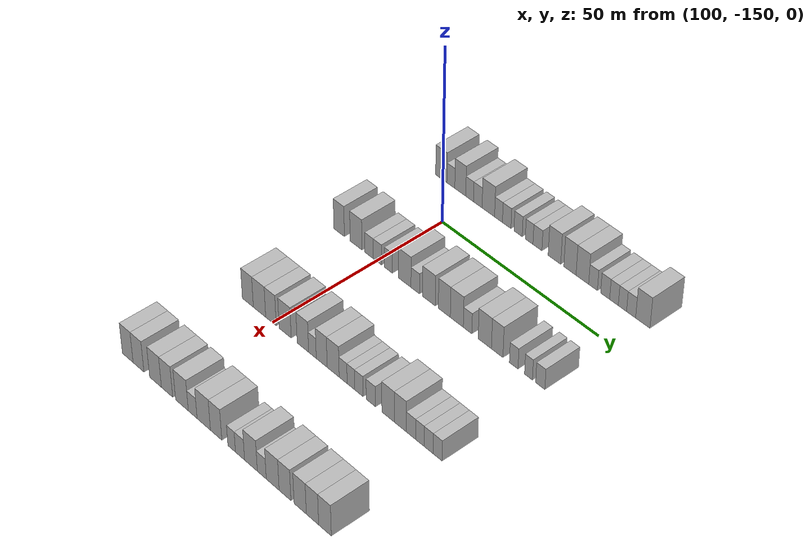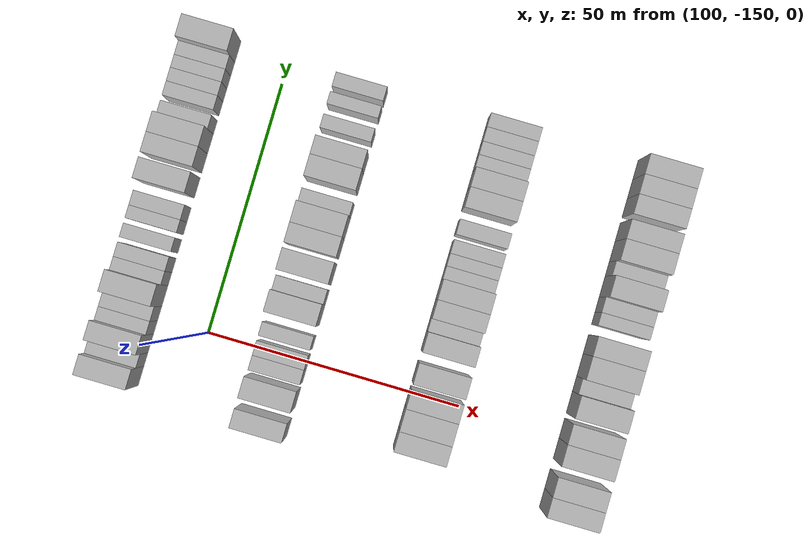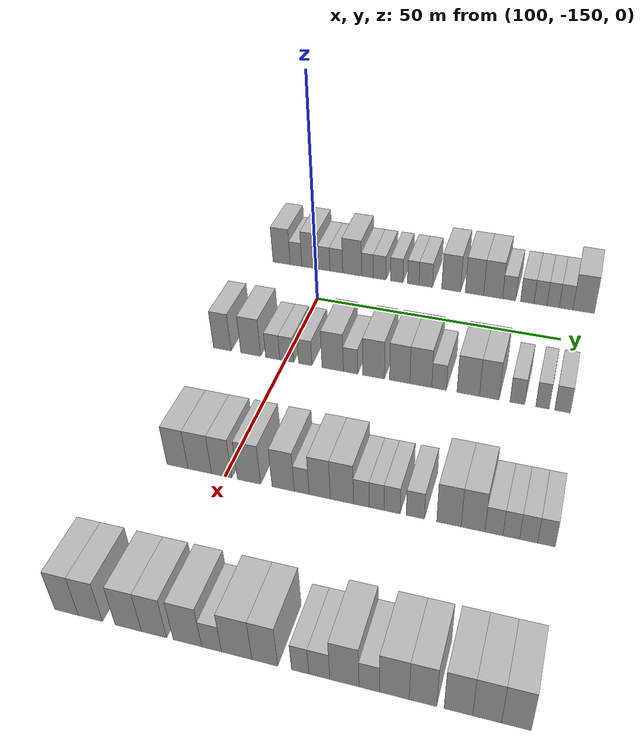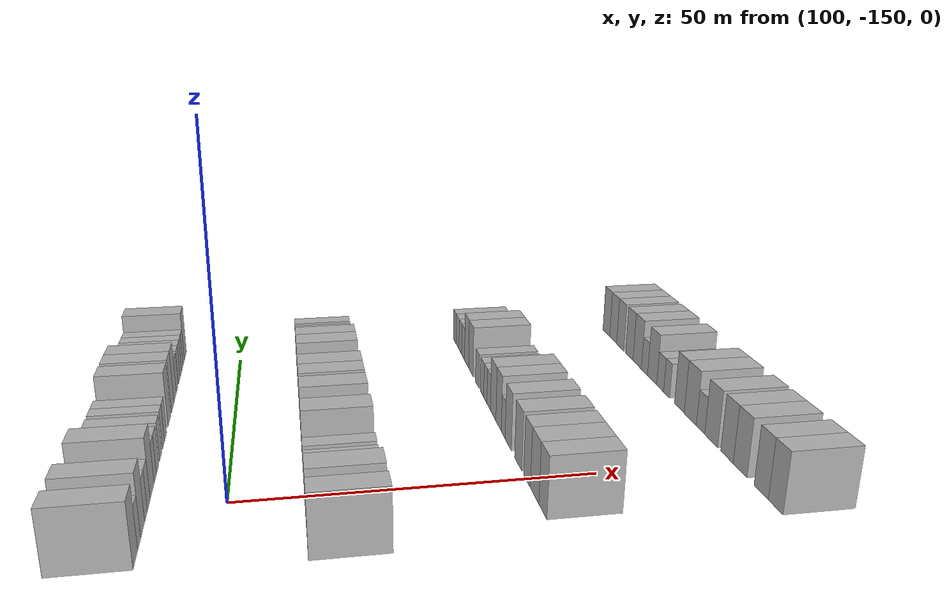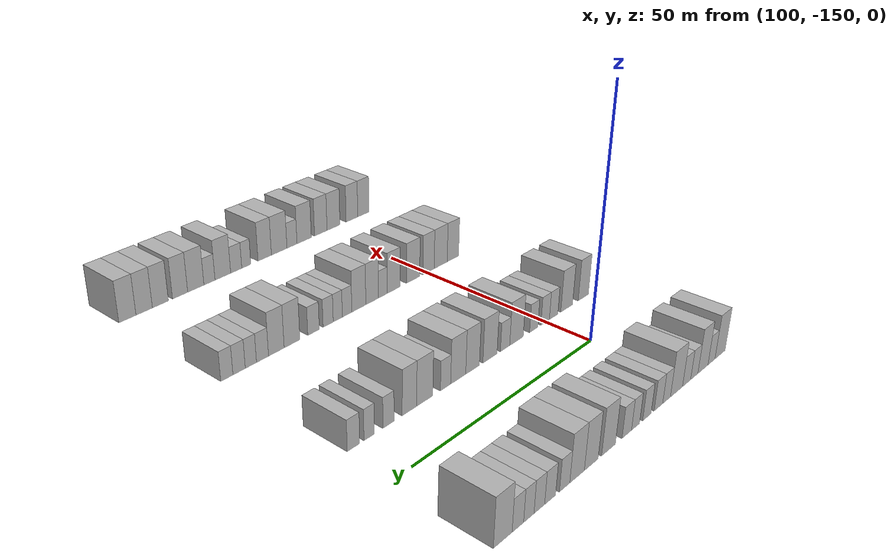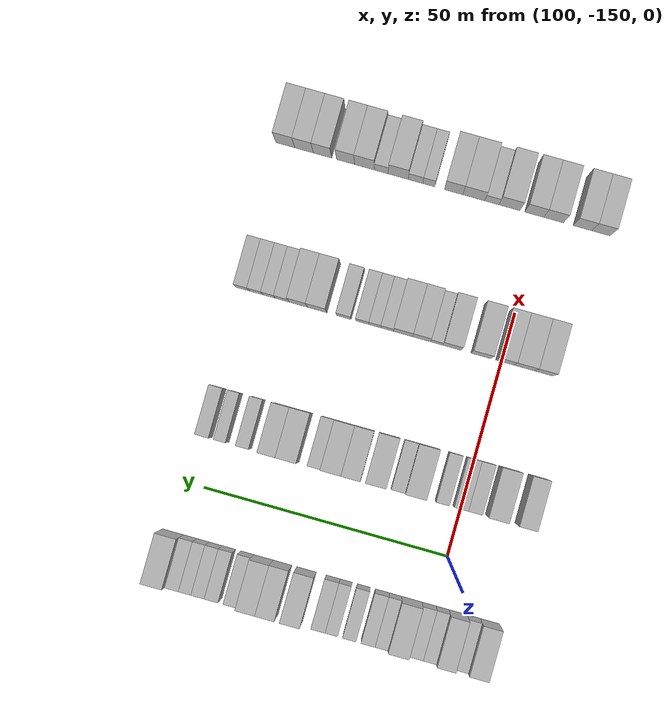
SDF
<sdf version="1.6">
 <world name="default">
  <model name="building_529">
   <static>1</static>
   <pose>85.0000 -161.4632 0 0.000000 0.000000 0.000000</pose>
   <link name="link">
    <pose>0 0 4.50 0 0 0</pose>
    <collision name="collision"><geometry><box><size>10.0000 3.9154 9.0000</size></box></geometry></collision>
    <visual name="visual">
     <cast_shadows>0</cast_shadows>
     <geometry><box><size>10.0000 3.9154 9.0000</size></box></geometry>
     <material>
      <script>
       <uri>model://HANNAS_wall/materials/scripts</uri>
       <uri>model://HANNAS_wall/materials/textures</uri>
       <name>vrc/HANNAS_wall</name>
      </script>
     </material>
    </visual>
   </link>
  </model>
  <model name="building_530">
   <static>1</static>
   <pose>85.0000 -158.1720 0 0.000000 0.000000 0.000000</pose>
   <link name="link">
    <pose>0 0 3.00 0 0 0</pose>
    <collision name="collision"><geometry><box><size>10.0000 2.6670 6.0000</size></box></geometry></collision>
    <visual name="visual">
     <cast_shadows>0</cast_shadows>
     <geometry><box><size>10.0000 2.6670 6.0000</size></box></geometry>
     <material>
      <script>
       <uri>model://HANNAS_wall/materials/scripts</uri>
       <uri>model://HANNAS_wall/materials/textures</uri>
       <name>vrc/HANNAS_wall</name>
      </script>
     </material>
    </visual>
   </link>
  </model>
  <model name="building_531">
   <static>1</static>
   <pose>85.0000 -154.9737 0 0.000000 0.000000 0.000000</pose>
   <link name="link">
    <pose>0 0 4.50 0 0 0</pose>
    <collision name="collision"><geometry><box><size>10.0000 3.7295 9.0000</size></box></geometry></collision>
    <visual name="visual">
     <cast_shadows>0</cast_shadows>
     <geometry><box><size>10.0000 3.7295 9.0000</size></box></geometry>
     <material>
      <script>
       <uri>model://HANNAS_wall/materials/scripts</uri>
       <uri>model://HANNAS_wall/materials/textures</uri>
       <name>vrc/HANNAS_wall</name>
      </script>
     </material>
    </visual>
   </link>
  </model>
  <model name="building_532">
   <static>1</static>
   <pose>85.0000 -151.7923 0 0.000000 0.000000 0.000000</pose>
   <link name="link">
    <pose>0 0 3.00 0 0 0</pose>
    <collision name="collision"><geometry><box><size>10.0000 2.6333 6.0000</size></box></geometry></collision>
    <visual name="visual">
     <cast_shadows>0</cast_shadows>
     <geometry><box><size>10.0000 2.6333 6.0000</size></box></geometry>
     <material>
      <script>
       <uri>model://HANNAS_wall/materials/scripts</uri>
       <uri>model://HANNAS_wall/materials/textures</uri>
       <name>vrc/HANNAS_wall</name>
      </script>
     </material>
    </visual>
   </link>
  </model>
  <model name="building_533">
   <static>1</static>
   <pose>85.0000 -149.0375 0 0.000000 0.000000 0.000000</pose>
   <link name="link">
    <pose>0 0 3.00 0 0 0</pose>
    <collision name="collision"><geometry><box><size>10.0000 2.8764 6.0000</size></box></geometry></collision>
    <visual name="visual">
     <cast_shadows>0</cast_shadows>
     <geometry><box><size>10.0000 2.8764 6.0000</size></box></geometry>
     <material>
      <script>
       <uri>model://HANNAS_wall/materials/scripts</uri>
       <uri>model://HANNAS_wall/materials/textures</uri>
       <name>vrc/HANNAS_wall</name>
      </script>
     </material>
    </visual>
   </link>
  </model>
  <model name="building_534">
   <static>1</static>
   <pose>85.0000 -145.5074 0 0.000000 0.000000 0.000000</pose>
   <link name="link">
    <pose>0 0 4.50 0 0 0</pose>
    <collision name="collision"><geometry><box><size>10.0000 4.1836 9.0000</size></box></geometry></collision>
    <visual name="visual">
     <cast_shadows>0</cast_shadows>
     <geometry><box><size>10.0000 4.1836 9.0000</size></box></geometry>
     <material>
      <script>
       <uri>model://HANNAS_wall/materials/scripts</uri>
       <uri>model://HANNAS_wall/materials/textures</uri>
       <name>vrc/HANNAS_wall</name>
      </script>
     </material>
    </visual>
   </link>
  </model>
  <model name="building_535">
   <static>1</static>
   <pose>85.0000 -142.1148 0 0.000000 0.000000 0.000000</pose>
   <link name="link">
    <pose>0 0 3.00 0 0 0</pose>
    <collision name="collision"><geometry><box><size>10.0000 2.6017 6.0000</size></box></geometry></collision>
    <visual name="visual">
     <cast_shadows>0</cast_shadows>
     <geometry><box><size>10.0000 2.6017 6.0000</size></box></geometry>
     <material>
      <script>
       <uri>model://HANNAS_wall/materials/scripts</uri>
       <uri>model://HANNAS_wall/materials/textures</uri>
       <name>vrc/HANNAS_wall</name>
      </script>
     </material>
    </visual>
   </link>
  </model>
  <model name="building_536">
   <static>1</static>
   <pose>85.0000 -139.4069 0 0.000000 0.000000 0.000000</pose>
   <link name="link">
    <pose>0 0 3.00 0 0 0</pose>
    <collision name="collision"><geometry><box><size>10.0000 2.8141 6.0000</size></box></geometry></collision>
    <visual name="visual">
     <cast_shadows>0</cast_shadows>
     <geometry><box><size>10.0000 2.8141 6.0000</size></box></geometry>
     <material>
      <script>
       <uri>model://HANNAS_wall/materials/scripts</uri>
       <uri>model://HANNAS_wall/materials/textures</uri>
       <name>vrc/HANNAS_wall</name>
      </script>
     </material>
    </visual>
   </link>
  </model>
  <model name="building_537">
   <static>1</static>
   <pose>85.0000 -135.6538 0 0.000000 0.000000 0.000000</pose>
   <link name="link">
    <pose>0 0 3.00 0 0 0</pose>
    <collision name="collision"><geometry><box><size>10.0000 2.6921 6.0000</size></box></geometry></collision>
    <visual name="visual">
     <cast_shadows>0</cast_shadows>
     <geometry><box><size>10.0000 2.6921 6.0000</size></box></geometry>
     <material>
      <script>
       <uri>model://HANNAS_wall/materials/scripts</uri>
       <uri>model://HANNAS_wall/materials/textures</uri>
       <name>vrc/HANNAS_wall</name>
      </script>
     </material>
    </visual>
   </link>
  </model>
  <model name="building_538">
   <static>1</static>
   <pose>85.0000 -132.0599 0 0.000000 0.000000 0.000000</pose>
   <link name="link">
    <pose>0 0 3.00 0 0 0</pose>
    <collision name="collision"><geometry><box><size>10.0000 2.4957 6.0000</size></box></geometry></collision>
    <visual name="visual">
     <cast_shadows>0</cast_shadows>
     <geometry><box><size>10.0000 2.4957 6.0000</size></box></geometry>
     <material>
      <script>
       <uri>model://HANNAS_wall/materials/scripts</uri>
       <uri>model://HANNAS_wall/materials/textures</uri>
       <name>vrc/HANNAS_wall</name>
      </script>
     </material>
    </visual>
   </link>
  </model>
  <model name="building_539">
   <static>1</static>
   <pose>85.0000 -129.3679 0 0.000000 0.000000 0.000000</pose>
   <link name="link">
    <pose>0 0 3.00 0 0 0</pose>
    <collision name="collision"><geometry><box><size>10.0000 2.8884 6.0000</size></box></geometry></collision>
    <visual name="visual">
     <cast_shadows>0</cast_shadows>
     <geometry><box><size>10.0000 2.8884 6.0000</size></box></geometry>
     <material>
      <script>
       <uri>model://HANNAS_wall/materials/scripts</uri>
       <uri>model://HANNAS_wall/materials/textures</uri>
       <name>vrc/HANNAS_wall</name>
      </script>
     </material>
    </visual>
   </link>
  </model>
  <model name="building_540">
   <static>1</static>
   <pose>85.0000 -123.9166 0 0.000000 0.000000 0.000000</pose>
   <link name="link">
    <pose>0 0 4.50 0 0 0</pose>
    <collision name="collision"><geometry><box><size>10.0000 4.0141 9.0000</size></box></geometry></collision>
    <visual name="visual">
     <cast_shadows>0</cast_shadows>
     <geometry><box><size>10.0000 4.0141 9.0000</size></box></geometry>
     <material>
      <script>
       <uri>model://HANNAS_wall/materials/scripts</uri>
       <uri>model://HANNAS_wall/materials/textures</uri>
       <name>vrc/HANNAS_wall</name>
      </script>
     </material>
    </visual>
   </link>
  </model>
  <model name="building_541">
   <static>1</static>
   <pose>85.0000 -118.9790 0 0.000000 0.000000 0.000000</pose>
   <link name="link">
    <pose>0 0 4.50 0 0 0</pose>
    <collision name="collision"><geometry><box><size>10.0000 3.8611 9.0000</size></box></geometry></collision>
    <visual name="visual">
     <cast_shadows>0</cast_shadows>
     <geometry><box><size>10.0000 3.8611 9.0000</size></box></geometry>
     <material>
      <script>
       <uri>model://HANNAS_wall/materials/scripts</uri>
       <uri>model://HANNAS_wall/materials/textures</uri>
       <name>vrc/HANNAS_wall</name>
      </script>
     </material>
    </visual>
   </link>
  </model>
  <model name="building_542">
   <static>1</static>
   <pose>85.0000 -115.0706 0 0.000000 0.000000 0.000000</pose>
   <link name="link">
    <pose>0 0 4.50 0 0 0</pose>
    <collision name="collision"><geometry><box><size>10.0000 3.9558 9.0000</size></box></geometry></collision>
    <visual name="visual">
     <cast_shadows>0</cast_shadows>
     <geometry><box><size>10.0000 3.9558 9.0000</size></box></geometry>
     <material>
      <script>
       <uri>model://HANNAS_wall/materials/scripts</uri>
       <uri>model://HANNAS_wall/materials/textures</uri>
       <name>vrc/HANNAS_wall</name>
      </script>
     </material>
    </visual>
   </link>
  </model>
  <model name="building_543">
   <static>1</static>
   <pose>85.0000 -111.7297 0 0.000000 0.000000 0.000000</pose>
   <link name="link">
    <pose>0 0 3.00 0 0 0</pose>
    <collision name="collision"><geometry><box><size>10.0000 2.7260 6.0000</size></box></geometry></collision>
    <visual name="visual">
     <cast_shadows>0</cast_shadows>
     <geometry><box><size>10.0000 2.7260 6.0000</size></box></geometry>
     <material>
      <script>
       <uri>model://HANNAS_wall/materials/scripts</uri>
       <uri>model://HANNAS_wall/materials/textures</uri>
       <name>vrc/HANNAS_wall</name>
      </script>
     </material>
    </visual>
   </link>
  </model>
  <model name="building_544">
   <static>1</static>
   <pose>85.0000 -107.9745 0 0.000000 0.000000 0.000000</pose>
   <link name="link">
    <pose>0 0 3.00 0 0 0</pose>
    <collision name="collision"><geometry><box><size>10.0000 2.7844 6.0000</size></box></geometry></collision>
    <visual name="visual">
     <cast_shadows>0</cast_shadows>
     <geometry><box><size>10.0000 2.7844 6.0000</size></box></geometry>
     <material>
      <script>
       <uri>model://HANNAS_wall/materials/scripts</uri>
       <uri>model://HANNAS_wall/materials/textures</uri>
       <name>vrc/HANNAS_wall</name>
      </script>
     </material>
    </visual>
   </link>
  </model>
  <model name="building_545">
   <static>1</static>
   <pose>85.0000 -105.2541 0 0.000000 0.000000 0.000000</pose>
   <link name="link">
    <pose>0 0 3.00 0 0 0</pose>
    <collision name="collision"><geometry><box><size>10.0000 2.6563 6.0000</size></box></geometry></collision>
    <visual name="visual">
     <cast_shadows>0</cast_shadows>
     <geometry><box><size>10.0000 2.6563 6.0000</size></box></geometry>
     <material>
      <script>
       <uri>model://HANNAS_wall/materials/scripts</uri>
       <uri>model://HANNAS_wall/materials/textures</uri>
       <name>vrc/HANNAS_wall</name>
      </script>
     </material>
    </visual>
   </link>
  </model>
  <model name="building_546">
   <static>1</static>
   <pose>85.0000 -102.6638 0 0.000000 0.000000 0.000000</pose>
   <link name="link">
    <pose>0 0 3.00 0 0 0</pose>
    <collision name="collision"><geometry><box><size>10.0000 2.5244 6.0000</size></box></geometry></collision>
    <visual name="visual">
     <cast_shadows>0</cast_shadows>
     <geometry><box><size>10.0000 2.5244 6.0000</size></box></geometry>
     <material>
      <script>
       <uri>model://HANNAS_wall/materials/scripts</uri>
       <uri>model://HANNAS_wall/materials/textures</uri>
       <name>vrc/HANNAS_wall</name>
      </script>
     </material>
    </visual>
   </link>
  </model>
  <model name="building_547">
   <static>1</static>
   <pose>85.0000 -100.0275 0 0.000000 0.000000 0.000000</pose>
   <link name="link">
    <pose>0 0 3.00 0 0 0</pose>
    <collision name="collision"><geometry><box><size>10.0000 2.7480 6.0000</size></box></geometry></collision>
    <visual name="visual">
     <cast_shadows>0</cast_shadows>
     <geometry><box><size>10.0000 2.7480 6.0000</size></box></geometry>
     <material>
      <script>
       <uri>model://HANNAS_wall/materials/scripts</uri>
       <uri>model://HANNAS_wall/materials/textures</uri>
       <name>vrc/HANNAS_wall</name>
      </script>
     </material>
    </visual>
   </link>
  </model>
  <model name="building_548">
   <static>1</static>
   <pose>85.0000 -96.4922 0 0.000000 0.000000 0.000000</pose>
   <link name="link">
    <pose>0 0 4.50 0 0 0</pose>
    <collision name="collision"><geometry><box><size>10.0000 4.3225 9.0000</size></box></geometry></collision>
    <visual name="visual">
     <cast_shadows>0</cast_shadows>
     <geometry><box><size>10.0000 4.3225 9.0000</size></box></geometry>
     <material>
      <script>
       <uri>model://HANNAS_wall/materials/scripts</uri>
       <uri>model://HANNAS_wall/materials/textures</uri>
       <name>vrc/HANNAS_wall</name>
      </script>
     </material>
    </visual>
   </link>
  </model>
  <model name="building_747">
   <static>1</static>
   <pose>115.0000 -162.8658 0 0.000000 0.000000 0.000000</pose>
   <link name="link">
    <pose>0 0 4.50 0 0 0</pose>
    <collision name="collision"><geometry><box><size>10.0000 3.6473 9.0000</size></box></geometry></collision>
    <visual name="visual">
     <cast_shadows>0</cast_shadows>
     <geometry><box><size>10.0000 3.6473 9.0000</size></box></geometry>
     <material>
      <script>
       <uri>model://HANNAS_wall/materials/scripts</uri>
       <uri>model://HANNAS_wall/materials/textures</uri>
       <name>vrc/HANNAS_wall</name>
      </script>
     </material>
    </visual>
   </link>
  </model>
  <model name="building_748">
   <static>1</static>
   <pose>115.0000 -157.0064 0 0.000000 0.000000 0.000000</pose>
   <link name="link">
    <pose>0 0 4.50 0 0 0</pose>
    <collision name="collision"><geometry><box><size>10.0000 4.0716 9.0000</size></box></geometry></collision>
    <visual name="visual">
     <cast_shadows>0</cast_shadows>
     <geometry><box><size>10.0000 4.0716 9.0000</size></box></geometry>
     <material>
      <script>
       <uri>model://HANNAS_wall/materials/scripts</uri>
       <uri>model://HANNAS_wall/materials/textures</uri>
       <name>vrc/HANNAS_wall</name>
      </script>
     </material>
    </visual>
   </link>
  </model>
  <model name="building_749">
   <static>1</static>
   <pose>115.0000 -152.5481 0 0.000000 0.000000 0.000000</pose>
   <link name="link">
    <pose>0 0 3.00 0 0 0</pose>
    <collision name="collision"><geometry><box><size>10.0000 2.8449 6.0000</size></box></geometry></collision>
    <visual name="visual">
     <cast_shadows>0</cast_shadows>
     <geometry><box><size>10.0000 2.8449 6.0000</size></box></geometry>
     <material>
      <script>
       <uri>model://HANNAS_wall/materials/scripts</uri>
       <uri>model://HANNAS_wall/materials/textures</uri>
       <name>vrc/HANNAS_wall</name>
      </script>
     </material>
    </visual>
   </link>
  </model>
  <model name="building_750">
   <static>1</static>
   <pose>115.0000 -149.7210 0 0.000000 0.000000 0.000000</pose>
   <link name="link">
    <pose>0 0 3.00 0 0 0</pose>
    <collision name="collision"><geometry><box><size>10.0000 2.8092 6.0000</size></box></geometry></collision>
    <visual name="visual">
     <cast_shadows>0</cast_shadows>
     <geometry><box><size>10.0000 2.8092 6.0000</size></box></geometry>
     <material>
      <script>
       <uri>model://HANNAS_wall/materials/scripts</uri>
       <uri>model://HANNAS_wall/materials/textures</uri>
       <name>vrc/HANNAS_wall</name>
      </script>
     </material>
    </visual>
   </link>
  </model>
  <model name="building_751">
   <static>1</static>
   <pose>115.0000 -145.9831 0 0.000000 0.000000 0.000000</pose>
   <link name="link">
    <pose>0 0 3.00 0 0 0</pose>
    <collision name="collision"><geometry><box><size>10.0000 2.6666 6.0000</size></box></geometry></collision>
    <visual name="visual">
     <cast_shadows>0</cast_shadows>
     <geometry><box><size>10.0000 2.6666 6.0000</size></box></geometry>
     <material>
      <script>
       <uri>model://HANNAS_wall/materials/scripts</uri>
       <uri>model://HANNAS_wall/materials/textures</uri>
       <name>vrc/HANNAS_wall</name>
      </script>
     </material>
    </visual>
   </link>
  </model>
  <model name="building_752">
   <static>1</static>
   <pose>115.0000 -140.5491 0 0.000000 0.000000 0.000000</pose>
   <link name="link">
    <pose>0 0 4.50 0 0 0</pose>
    <collision name="collision"><geometry><box><size>10.0000 4.2014 9.0000</size></box></geometry></collision>
    <visual name="visual">
     <cast_shadows>0</cast_shadows>
     <geometry><box><size>10.0000 4.2014 9.0000</size></box></geometry>
     <material>
      <script>
       <uri>model://HANNAS_wall/materials/scripts</uri>
       <uri>model://HANNAS_wall/materials/textures</uri>
       <name>vrc/HANNAS_wall</name>
      </script>
     </material>
    </visual>
   </link>
  </model>
  <model name="building_753">
   <static>1</static>
   <pose>115.0000 -137.0379 0 0.000000 0.000000 0.000000</pose>
   <link name="link">
    <pose>0 0 3.00 0 0 0</pose>
    <collision name="collision"><geometry><box><size>10.0000 2.8211 6.0000</size></box></geometry></collision>
    <visual name="visual">
     <cast_shadows>0</cast_shadows>
     <geometry><box><size>10.0000 2.8211 6.0000</size></box></geometry>
     <material>
      <script>
       <uri>model://HANNAS_wall/materials/scripts</uri>
       <uri>model://HANNAS_wall/materials/textures</uri>
       <name>vrc/HANNAS_wall</name>
      </script>
     </material>
    </visual>
   </link>
  </model>
  <model name="building_754">
   <static>1</static>
   <pose>115.0000 -132.5451 0 0.000000 0.000000 0.000000</pose>
   <link name="link">
    <pose>0 0 4.50 0 0 0</pose>
    <collision name="collision"><geometry><box><size>10.0000 4.1646 9.0000</size></box></geometry></collision>
    <visual name="visual">
     <cast_shadows>0</cast_shadows>
     <geometry><box><size>10.0000 4.1646 9.0000</size></box></geometry>
     <material>
      <script>
       <uri>model://HANNAS_wall/materials/scripts</uri>
       <uri>model://HANNAS_wall/materials/textures</uri>
       <name>vrc/HANNAS_wall</name>
      </script>
     </material>
    </visual>
   </link>
  </model>
  <model name="building_755">
   <static>1</static>
   <pose>115.0000 -127.5293 0 0.000000 0.000000 0.000000</pose>
   <link name="link">
    <pose>0 0 4.50 0 0 0</pose>
    <collision name="collision"><geometry><box><size>10.0000 3.8669 9.0000</size></box></geometry></collision>
    <visual name="visual">
     <cast_shadows>0</cast_shadows>
     <geometry><box><size>10.0000 3.8669 9.0000</size></box></geometry>
     <material>
      <script>
       <uri>model://HANNAS_wall/materials/scripts</uri>
       <uri>model://HANNAS_wall/materials/textures</uri>
       <name>vrc/HANNAS_wall</name>
      </script>
     </material>
    </visual>
   </link>
  </model>
  <model name="building_756">
   <static>1</static>
   <pose>115.0000 -123.5208 0 0.000000 0.000000 0.000000</pose>
   <link name="link">
    <pose>0 0 4.50 0 0 0</pose>
    <collision name="collision"><geometry><box><size>10.0000 4.1502 9.0000</size></box></geometry></collision>
    <visual name="visual">
     <cast_shadows>0</cast_shadows>
     <geometry><box><size>10.0000 4.1502 9.0000</size></box></geometry>
     <material>
      <script>
       <uri>model://HANNAS_wall/materials/scripts</uri>
       <uri>model://HANNAS_wall/materials/textures</uri>
       <name>vrc/HANNAS_wall</name>
      </script>
     </material>
    </visual>
   </link>
  </model>
  <model name="building_757">
   <static>1</static>
   <pose>115.0000 -120.0770 0 0.000000 0.000000 0.000000</pose>
   <link name="link">
    <pose>0 0 3.00 0 0 0</pose>
    <collision name="collision"><geometry><box><size>10.0000 2.7372 6.0000</size></box></geometry></collision>
    <visual name="visual">
     <cast_shadows>0</cast_shadows>
     <geometry><box><size>10.0000 2.7372 6.0000</size></box></geometry>
     <material>
      <script>
       <uri>model://HANNAS_wall/materials/scripts</uri>
       <uri>model://HANNAS_wall/materials/textures</uri>
       <name>vrc/HANNAS_wall</name>
      </script>
     </material>
    </visual>
   </link>
  </model>
  <model name="building_758">
   <static>1</static>
   <pose>115.0000 -114.6228 0 0.000000 0.000000 0.000000</pose>
   <link name="link">
    <pose>0 0 4.50 0 0 0</pose>
    <collision name="collision"><geometry><box><size>10.0000 4.1712 9.0000</size></box></geometry></collision>
    <visual name="visual">
     <cast_shadows>0</cast_shadows>
     <geometry><box><size>10.0000 4.1712 9.0000</size></box></geometry>
     <material>
      <script>
       <uri>model://HANNAS_wall/materials/scripts</uri>
       <uri>model://HANNAS_wall/materials/textures</uri>
       <name>vrc/HANNAS_wall</name>
      </script>
     </material>
    </visual>
   </link>
  </model>
  <model name="building_759">
   <static>1</static>
   <pose>115.0000 -110.7370 0 0.000000 0.000000 0.000000</pose>
   <link name="link">
    <pose>0 0 4.50 0 0 0</pose>
    <collision name="collision"><geometry><box><size>10.0000 3.6004 9.0000</size></box></geometry></collision>
    <visual name="visual">
     <cast_shadows>0</cast_shadows>
     <geometry><box><size>10.0000 3.6004 9.0000</size></box></geometry>
     <material>
      <script>
       <uri>model://HANNAS_wall/materials/scripts</uri>
       <uri>model://HANNAS_wall/materials/textures</uri>
       <name>vrc/HANNAS_wall</name>
      </script>
     </material>
    </visual>
   </link>
  </model>
  <model name="building_760">
   <static>1</static>
   <pose>115.0000 -105.6089 0 0.000000 0.000000 0.000000</pose>
   <link name="link">
    <pose>0 0 3.00 0 0 0</pose>
    <collision name="collision"><geometry><box><size>10.0000 2.6559 6.0000</size></box></geometry></collision>
    <visual name="visual">
     <cast_shadows>0</cast_shadows>
     <geometry><box><size>10.0000 2.6559 6.0000</size></box></geometry>
     <material>
      <script>
       <uri>model://HANNAS_wall/materials/scripts</uri>
       <uri>model://HANNAS_wall/materials/textures</uri>
       <name>vrc/HANNAS_wall</name>
      </script>
     </material>
    </visual>
   </link>
  </model>
  <model name="building_761">
   <static>1</static>
   <pose>115.0000 -101.0777 0 0.000000 0.000000 0.000000</pose>
   <link name="link">
    <pose>0 0 3.00 0 0 0</pose>
    <collision name="collision"><geometry><box><size>10.0000 2.4064 6.0000</size></box></geometry></collision>
    <visual name="visual">
     <cast_shadows>0</cast_shadows>
     <geometry><box><size>10.0000 2.4064 6.0000</size></box></geometry>
     <material>
      <script>
       <uri>model://HANNAS_wall/materials/scripts</uri>
       <uri>model://HANNAS_wall/materials/textures</uri>
       <name>vrc/HANNAS_wall</name>
      </script>
     </material>
    </visual>
   </link>
  </model>
  <model name="building_762">
   <static>1</static>
   <pose>115.0000 -97.4797 0 0.000000 0.000000 0.000000</pose>
   <link name="link">
    <pose>0 0 3.00 0 0 0</pose>
    <collision name="collision"><geometry><box><size>10.0000 2.7895 6.0000</size></box></geometry></collision>
    <visual name="visual">
     <cast_shadows>0</cast_shadows>
     <geometry><box><size>10.0000 2.7895 6.0000</size></box></geometry>
     <material>
      <script>
       <uri>model://HANNAS_wall/materials/scripts</uri>
       <uri>model://HANNAS_wall/materials/textures</uri>
       <name>vrc/HANNAS_wall</name>
      </script>
     </material>
    </visual>
   </link>
  </model>
  <model name="building_969">
   <static>1</static>
   <pose>145.0000 -158.5375 0 0.000000 0.000000 0.000000</pose>
   <link name="link">
    <pose>0 0 4.50 0 0 0</pose>
    <collision name="collision"><geometry><box><size>10.0000 3.8225 9.0000</size></box></geometry></collision>
    <visual name="visual">
     <cast_shadows>0</cast_shadows>
     <geometry><box><size>10.0000 3.8225 9.0000</size></box></geometry>
     <material>
      <script>
       <uri>model://HANNAS_wall/materials/scripts</uri>
       <uri>model://HANNAS_wall/materials/textures</uri>
       <name>vrc/HANNAS_wall</name>
      </script>
     </material>
    </visual>
   </link>
  </model>
  <model name="building_970">
   <static>1</static>
   <pose>145.0000 -154.4945 0 0.000000 0.000000 0.000000</pose>
   <link name="link">
    <pose>0 0 4.50 0 0 0</pose>
    <collision name="collision"><geometry><box><size>10.0000 4.2635 9.0000</size></box></geometry></collision>
    <visual name="visual">
     <cast_shadows>0</cast_shadows>
     <geometry><box><size>10.0000 4.2635 9.0000</size></box></geometry>
     <material>
      <script>
       <uri>model://HANNAS_wall/materials/scripts</uri>
       <uri>model://HANNAS_wall/materials/textures</uri>
       <name>vrc/HANNAS_wall</name>
      </script>
     </material>
    </visual>
   </link>
  </model>
  <model name="building_971">
   <static>1</static>
   <pose>145.0000 -150.5561 0 0.000000 0.000000 0.000000</pose>
   <link name="link">
    <pose>0 0 4.50 0 0 0</pose>
    <collision name="collision"><geometry><box><size>10.0000 3.6132 9.0000</size></box></geometry></collision>
    <visual name="visual">
     <cast_shadows>0</cast_shadows>
     <geometry><box><size>10.0000 3.6132 9.0000</size></box></geometry>
     <material>
      <script>
       <uri>model://HANNAS_wall/materials/scripts</uri>
       <uri>model://HANNAS_wall/materials/textures</uri>
       <name>vrc/HANNAS_wall</name>
      </script>
     </material>
    </visual>
   </link>
  </model>
  <model name="building_972">
   <static>1</static>
   <pose>145.0000 -145.6980 0 0.000000 0.000000 0.000000</pose>
   <link name="link">
    <pose>0 0 4.50 0 0 0</pose>
    <collision name="collision"><geometry><box><size>10.0000 4.1030 9.0000</size></box></geometry></collision>
    <visual name="visual">
     <cast_shadows>0</cast_shadows>
     <geometry><box><size>10.0000 4.1030 9.0000</size></box></geometry>
     <material>
      <script>
       <uri>model://HANNAS_wall/materials/scripts</uri>
       <uri>model://HANNAS_wall/materials/textures</uri>
       <name>vrc/HANNAS_wall</name>
      </script>
     </material>
    </visual>
   </link>
  </model>
  <model name="building_973">
   <static>1</static>
   <pose>145.0000 -139.7237 0 0.000000 0.000000 0.000000</pose>
   <link name="link">
    <pose>0 0 4.50 0 0 0</pose>
    <collision name="collision"><geometry><box><size>10.0000 3.8456 9.0000</size></box></geometry></collision>
    <visual name="visual">
     <cast_shadows>0</cast_shadows>
     <geometry><box><size>10.0000 3.8456 9.0000</size></box></geometry>
     <material>
      <script>
       <uri>model://HANNAS_wall/materials/scripts</uri>
       <uri>model://HANNAS_wall/materials/textures</uri>
       <name>vrc/HANNAS_wall</name>
      </script>
     </material>
    </visual>
   </link>
  </model>
  <model name="building_974">
   <static>1</static>
   <pose>145.0000 -136.5314 0 0.000000 0.000000 0.000000</pose>
   <link name="link">
    <pose>0 0 3.00 0 0 0</pose>
    <collision name="collision"><geometry><box><size>10.0000 2.5390 6.0000</size></box></geometry></collision>
    <visual name="visual">
     <cast_shadows>0</cast_shadows>
     <geometry><box><size>10.0000 2.5390 6.0000</size></box></geometry>
     <material>
      <script>
       <uri>model://HANNAS_wall/materials/scripts</uri>
       <uri>model://HANNAS_wall/materials/textures</uri>
       <name>vrc/HANNAS_wall</name>
      </script>
     </material>
    </visual>
   </link>
  </model>
  <model name="building_975">
   <static>1</static>
   <pose>145.0000 -133.4529 0 0.000000 0.000000 0.000000</pose>
   <link name="link">
    <pose>0 0 4.50 0 0 0</pose>
    <collision name="collision"><geometry><box><size>10.0000 3.6180 9.0000</size></box></geometry></collision>
    <visual name="visual">
     <cast_shadows>0</cast_shadows>
     <geometry><box><size>10.0000 3.6180 9.0000</size></box></geometry>
     <material>
      <script>
       <uri>model://HANNAS_wall/materials/scripts</uri>
       <uri>model://HANNAS_wall/materials/textures</uri>
       <name>vrc/HANNAS_wall</name>
      </script>
     </material>
    </visual>
   </link>
  </model>
  <model name="building_976">
   <static>1</static>
   <pose>145.0000 -129.6791 0 0.000000 0.000000 0.000000</pose>
   <link name="link">
    <pose>0 0 4.50 0 0 0</pose>
    <collision name="collision"><geometry><box><size>10.0000 3.9295 9.0000</size></box></geometry></collision>
    <visual name="visual">
     <cast_shadows>0</cast_shadows>
     <geometry><box><size>10.0000 3.9295 9.0000</size></box></geometry>
     <material>
      <script>
       <uri>model://HANNAS_wall/materials/scripts</uri>
       <uri>model://HANNAS_wall/materials/textures</uri>
       <name>vrc/HANNAS_wall</name>
      </script>
     </material>
    </visual>
   </link>
  </model>
  <model name="building_977">
   <static>1</static>
   <pose>145.0000 -126.4162 0 0.000000 0.000000 0.000000</pose>
   <link name="link">
    <pose>0 0 3.00 0 0 0</pose>
    <collision name="collision"><geometry><box><size>10.0000 2.5963 6.0000</size></box></geometry></collision>
    <visual name="visual">
     <cast_shadows>0</cast_shadows>
     <geometry><box><size>10.0000 2.5963 6.0000</size></box></geometry>
     <material>
      <script>
       <uri>model://HANNAS_wall/materials/scripts</uri>
       <uri>model://HANNAS_wall/materials/textures</uri>
       <name>vrc/HANNAS_wall</name>
      </script>
     </material>
    </visual>
   </link>
  </model>
  <model name="building_978">
   <static>1</static>
   <pose>145.0000 -123.8875 0 0.000000 0.000000 0.000000</pose>
   <link name="link">
    <pose>0 0 3.00 0 0 0</pose>
    <collision name="collision"><geometry><box><size>10.0000 2.4611 6.0000</size></box></geometry></collision>
    <visual name="visual">
     <cast_shadows>0</cast_shadows>
     <geometry><box><size>10.0000 2.4611 6.0000</size></box></geometry>
     <material>
      <script>
       <uri>model://HANNAS_wall/materials/scripts</uri>
       <uri>model://HANNAS_wall/materials/textures</uri>
       <name>vrc/HANNAS_wall</name>
      </script>
     </material>
    </visual>
   </link>
  </model>
  <model name="building_979">
   <static>1</static>
   <pose>145.0000 -121.3171 0 0.000000 0.000000 0.000000</pose>
   <link name="link">
    <pose>0 0 3.00 0 0 0</pose>
    <collision name="collision"><geometry><box><size>10.0000 2.6798 6.0000</size></box></geometry></collision>
    <visual name="visual">
     <cast_shadows>0</cast_shadows>
     <geometry><box><size>10.0000 2.6798 6.0000</size></box></geometry>
     <material>
      <script>
       <uri>model://HANNAS_wall/materials/scripts</uri>
       <uri>model://HANNAS_wall/materials/textures</uri>
       <name>vrc/HANNAS_wall</name>
      </script>
     </material>
    </visual>
   </link>
  </model>
  <model name="building_980">
   <static>1</static>
   <pose>145.0000 -117.4890 0 0.000000 0.000000 0.000000</pose>
   <link name="link">
    <pose>0 0 3.00 0 0 0</pose>
    <collision name="collision"><geometry><box><size>10.0000 2.9762 6.0000</size></box></geometry></collision>
    <visual name="visual">
     <cast_shadows>0</cast_shadows>
     <geometry><box><size>10.0000 2.9762 6.0000</size></box></geometry>
     <material>
      <script>
       <uri>model://HANNAS_wall/materials/scripts</uri>
       <uri>model://HANNAS_wall/materials/textures</uri>
       <name>vrc/HANNAS_wall</name>
      </script>
     </material>
    </visual>
   </link>
  </model>
  <model name="building_981">
   <static>1</static>
   <pose>145.0000 -112.0385 0 0.000000 0.000000 0.000000</pose>
   <link name="link">
    <pose>0 0 4.50 0 0 0</pose>
    <collision name="collision"><geometry><box><size>10.0000 3.9248 9.0000</size></box></geometry></collision>
    <visual name="visual">
     <cast_shadows>0</cast_shadows>
     <geometry><box><size>10.0000 3.9248 9.0000</size></box></geometry>
     <material>
      <script>
       <uri>model://HANNAS_wall/materials/scripts</uri>
       <uri>model://HANNAS_wall/materials/textures</uri>
       <name>vrc/HANNAS_wall</name>
      </script>
     </material>
    </visual>
   </link>
  </model>
  <model name="building_982">
   <static>1</static>
   <pose>145.0000 -108.1846 0 0.000000 0.000000 0.000000</pose>
   <link name="link">
    <pose>0 0 4.50 0 0 0</pose>
    <collision name="collision"><geometry><box><size>10.0000 3.7831 9.0000</size></box></geometry></collision>
    <visual name="visual">
     <cast_shadows>0</cast_shadows>
     <geometry><box><size>10.0000 3.7831 9.0000</size></box></geometry>
     <material>
      <script>
       <uri>model://HANNAS_wall/materials/scripts</uri>
       <uri>model://HANNAS_wall/materials/textures</uri>
       <name>vrc/HANNAS_wall</name>
      </script>
     </material>
    </visual>
   </link>
  </model>
  <model name="building_983">
   <static>1</static>
   <pose>145.0000 -104.8648 0 0.000000 0.000000 0.000000</pose>
   <link name="link">
    <pose>0 0 3.00 0 0 0</pose>
    <collision name="collision"><geometry><box><size>10.0000 2.8564 6.0000</size></box></geometry></collision>
    <visual name="visual">
     <cast_shadows>0</cast_shadows>
     <geometry><box><size>10.0000 2.8564 6.0000</size></box></geometry>
     <material>
      <script>
       <uri>model://HANNAS_wall/materials/scripts</uri>
       <uri>model://HANNAS_wall/materials/textures</uri>
       <name>vrc/HANNAS_wall</name>
      </script>
     </material>
    </visual>
   </link>
  </model>
  <model name="building_984">
   <static>1</static>
   <pose>145.0000 -102.1376 0 0.000000 0.000000 0.000000</pose>
   <link name="link">
    <pose>0 0 3.00 0 0 0</pose>
    <collision name="collision"><geometry><box><size>10.0000 2.5980 6.0000</size></box></geometry></collision>
    <visual name="visual">
     <cast_shadows>0</cast_shadows>
     <geometry><box><size>10.0000 2.5980 6.0000</size></box></geometry>
     <material>
      <script>
       <uri>model://HANNAS_wall/materials/scripts</uri>
       <uri>model://HANNAS_wall/materials/textures</uri>
       <name>vrc/HANNAS_wall</name>
      </script>
     </material>
    </visual>
   </link>
  </model>
  <model name="building_985">
   <static>1</static>
   <pose>145.0000 -99.4336 0 0.000000 0.000000 0.000000</pose>
   <link name="link">
    <pose>0 0 3.00 0 0 0</pose>
    <collision name="collision"><geometry><box><size>10.0000 2.8101 6.0000</size></box></geometry></collision>
    <visual name="visual">
     <cast_shadows>0</cast_shadows>
     <geometry><box><size>10.0000 2.8101 6.0000</size></box></geometry>
     <material>
      <script>
       <uri>model://HANNAS_wall/materials/scripts</uri>
       <uri>model://HANNAS_wall/materials/textures</uri>
       <name>vrc/HANNAS_wall</name>
      </script>
     </material>
    </visual>
   </link>
  </model>
  <model name="building_986">
   <static>1</static>
   <pose>145.0000 -96.6657 0 0.000000 0.000000 0.000000</pose>
   <link name="link">
    <pose>0 0 3.00 0 0 0</pose>
    <collision name="collision"><geometry><box><size>10.0000 2.7257 6.0000</size></box></geometry></collision>
    <visual name="visual">
     <cast_shadows>0</cast_shadows>
     <geometry><box><size>10.0000 2.7257 6.0000</size></box></geometry>
     <material>
      <script>
       <uri>model://HANNAS_wall/materials/scripts</uri>
       <uri>model://HANNAS_wall/materials/textures</uri>
       <name>vrc/HANNAS_wall</name>
      </script>
     </material>
    </visual>
   </link>
  </model>
  <model name="building_1198">
   <static>1</static>
   <pose>175.0000 -162.1581 0 0.000000 0.000000 0.000000</pose>
   <link name="link">
    <pose>0 0 4.50 0 0 0</pose>
    <collision name="collision"><geometry><box><size>10.0000 3.7921 9.0000</size></box></geometry></collision>
    <visual name="visual">
     <cast_shadows>0</cast_shadows>
     <geometry><box><size>10.0000 3.7921 9.0000</size></box></geometry>
     <material>
      <script>
       <uri>model://HANNAS_wall/materials/scripts</uri>
       <uri>model://HANNAS_wall/materials/textures</uri>
       <name>vrc/HANNAS_wall</name>
      </script>
     </material>
    </visual>
   </link>
  </model>
  <model name="building_1199">
   <static>1</static>
   <pose>175.0000 -158.3485 0 0.000000 0.000000 0.000000</pose>
   <link name="link">
    <pose>0 0 4.50 0 0 0</pose>
    <collision name="collision"><geometry><box><size>10.0000 3.8270 9.0000</size></box></geometry></collision>
    <visual name="visual">
     <cast_shadows>0</cast_shadows>
     <geometry><box><size>10.0000 3.8270 9.0000</size></box></geometry>
     <material>
      <script>
       <uri>model://HANNAS_wall/materials/scripts</uri>
       <uri>model://HANNAS_wall/materials/textures</uri>
       <name>vrc/HANNAS_wall</name>
      </script>
     </material>
    </visual>
   </link>
  </model>
  <model name="building_1200">
   <static>1</static>
   <pose>175.0000 -152.3814 0 0.000000 0.000000 0.000000</pose>
   <link name="link">
    <pose>0 0 4.50 0 0 0</pose>
    <collision name="collision"><geometry><box><size>10.0000 4.1072 9.0000</size></box></geometry></collision>
    <visual name="visual">
     <cast_shadows>0</cast_shadows>
     <geometry><box><size>10.0000 4.1072 9.0000</size></box></geometry>
     <material>
      <script>
       <uri>model://HANNAS_wall/materials/scripts</uri>
       <uri>model://HANNAS_wall/materials/textures</uri>
       <name>vrc/HANNAS_wall</name>
      </script>
     </material>
    </visual>
   </link>
  </model>
  <model name="building_1201">
   <static>1</static>
   <pose>175.0000 -148.3799 0 0.000000 0.000000 0.000000</pose>
   <link name="link">
    <pose>0 0 4.50 0 0 0</pose>
    <collision name="collision"><geometry><box><size>10.0000 3.8960 9.0000</size></box></geometry></collision>
    <visual name="visual">
     <cast_shadows>0</cast_shadows>
     <geometry><box><size>10.0000 3.8960 9.0000</size></box></geometry>
     <material>
      <script>
       <uri>model://HANNAS_wall/materials/scripts</uri>
       <uri>model://HANNAS_wall/materials/textures</uri>
       <name>vrc/HANNAS_wall</name>
      </script>
     </material>
    </visual>
   </link>
  </model>
  <model name="building_1202">
   <static>1</static>
   <pose>175.0000 -143.2644 0 0.000000 0.000000 0.000000</pose>
   <link name="link">
    <pose>0 0 4.50 0 0 0</pose>
    <collision name="collision"><geometry><box><size>10.0000 4.3349 9.0000</size></box></geometry></collision>
    <visual name="visual">
     <cast_shadows>0</cast_shadows>
     <geometry><box><size>10.0000 4.3349 9.0000</size></box></geometry>
     <material>
      <script>
       <uri>model://HANNAS_wall/materials/scripts</uri>
       <uri>model://HANNAS_wall/materials/textures</uri>
       <name>vrc/HANNAS_wall</name>
      </script>
     </material>
    </visual>
   </link>
  </model>
  <model name="building_1203">
   <static>1</static>
   <pose>175.0000 -139.6082 0 0.000000 0.000000 0.000000</pose>
   <link name="link">
    <pose>0 0 3.00 0 0 0</pose>
    <collision name="collision"><geometry><box><size>10.0000 2.9776 6.0000</size></box></geometry></collision>
    <visual name="visual">
     <cast_shadows>0</cast_shadows>
     <geometry><box><size>10.0000 2.9776 6.0000</size></box></geometry>
     <material>
      <script>
       <uri>model://HANNAS_wall/materials/scripts</uri>
       <uri>model://HANNAS_wall/materials/textures</uri>
       <name>vrc/HANNAS_wall</name>
      </script>
     </material>
    </visual>
   </link>
  </model>
  <model name="building_1204">
   <static>1</static>
   <pose>175.0000 -135.8698 0 0.000000 0.000000 0.000000</pose>
   <link name="link">
    <pose>0 0 4.50 0 0 0</pose>
    <collision name="collision"><geometry><box><size>10.0000 4.4991 9.0000</size></box></geometry></collision>
    <visual name="visual">
     <cast_shadows>0</cast_shadows>
     <geometry><box><size>10.0000 4.4991 9.0000</size></box></geometry>
     <material>
      <script>
       <uri>model://HANNAS_wall/materials/scripts</uri>
       <uri>model://HANNAS_wall/materials/textures</uri>
       <name>vrc/HANNAS_wall</name>
      </script>
     </material>
    </visual>
   </link>
  </model>
  <model name="building_1205">
   <static>1</static>
   <pose>175.0000 -131.7249 0 0.000000 0.000000 0.000000</pose>
   <link name="link">
    <pose>0 0 4.50 0 0 0</pose>
    <collision name="collision"><geometry><box><size>10.0000 3.7909 9.0000</size></box></geometry></collision>
    <visual name="visual">
     <cast_shadows>0</cast_shadows>
     <geometry><box><size>10.0000 3.7909 9.0000</size></box></geometry>
     <material>
      <script>
       <uri>model://HANNAS_wall/materials/scripts</uri>
       <uri>model://HANNAS_wall/materials/textures</uri>
       <name>vrc/HANNAS_wall</name>
      </script>
     </material>
    </visual>
   </link>
  </model>
  <model name="building_1206">
   <static>1</static>
   <pose>175.0000 -126.5851 0 0.000000 0.000000 0.000000</pose>
   <link name="link">
    <pose>0 0 3.00 0 0 0</pose>
    <collision name="collision"><geometry><box><size>10.0000 2.4888 6.0000</size></box></geometry></collision>
    <visual name="visual">
     <cast_shadows>0</cast_shadows>
     <geometry><box><size>10.0000 2.4888 6.0000</size></box></geometry>
     <material>
      <script>
       <uri>model://HANNAS_wall/materials/scripts</uri>
       <uri>model://HANNAS_wall/materials/textures</uri>
       <name>vrc/HANNAS_wall</name>
      </script>
     </material>
    </visual>
   </link>
  </model>
  <model name="building_1207">
   <static>1</static>
   <pose>175.0000 -123.8441 0 0.000000 0.000000 0.000000</pose>
   <link name="link">
    <pose>0 0 3.00 0 0 0</pose>
    <collision name="collision"><geometry><box><size>10.0000 2.9931 6.0000</size></box></geometry></collision>
    <visual name="visual">
     <cast_shadows>0</cast_shadows>
     <geometry><box><size>10.0000 2.9931 6.0000</size></box></geometry>
     <material>
      <script>
       <uri>model://HANNAS_wall/materials/scripts</uri>
       <uri>model://HANNAS_wall/materials/textures</uri>
       <name>vrc/HANNAS_wall</name>
      </script>
     </material>
    </visual>
   </link>
  </model>
  <model name="building_1208">
   <static>1</static>
   <pose>175.0000 -120.2841 0 0.000000 0.000000 0.000000</pose>
   <link name="link">
    <pose>0 0 4.50 0 0 0</pose>
    <collision name="collision"><geometry><box><size>10.0000 4.1269 9.0000</size></box></geometry></collision>
    <visual name="visual">
     <cast_shadows>0</cast_shadows>
     <geometry><box><size>10.0000 4.1269 9.0000</size></box></geometry>
     <material>
      <script>
       <uri>model://HANNAS_wall/materials/scripts</uri>
       <uri>model://HANNAS_wall/materials/textures</uri>
       <name>vrc/HANNAS_wall</name>
      </script>
     </material>
    </visual>
   </link>
  </model>
  <model name="building_1209">
   <static>1</static>
   <pose>175.0000 -116.7859 0 0.000000 0.000000 0.000000</pose>
   <link name="link">
    <pose>0 0 3.00 0 0 0</pose>
    <collision name="collision"><geometry><box><size>10.0000 2.8696 6.0000</size></box></geometry></collision>
    <visual name="visual">
     <cast_shadows>0</cast_shadows>
     <geometry><box><size>10.0000 2.8696 6.0000</size></box></geometry>
     <material>
      <script>
       <uri>model://HANNAS_wall/materials/scripts</uri>
       <uri>model://HANNAS_wall/materials/textures</uri>
       <name>vrc/HANNAS_wall</name>
      </script>
     </material>
    </visual>
   </link>
  </model>
  <model name="building_1210">
   <static>1</static>
   <pose>175.0000 -113.2992 0 0.000000 0.000000 0.000000</pose>
   <link name="link">
    <pose>0 0 4.50 0 0 0</pose>
    <collision name="collision"><geometry><box><size>10.0000 4.1038 9.0000</size></box></geometry></collision>
    <visual name="visual">
     <cast_shadows>0</cast_shadows>
     <geometry><box><size>10.0000 4.1038 9.0000</size></box></geometry>
     <material>
      <script>
       <uri>model://HANNAS_wall/materials/scripts</uri>
       <uri>model://HANNAS_wall/materials/textures</uri>
       <name>vrc/HANNAS_wall</name>
      </script>
     </material>
    </visual>
   </link>
  </model>
  <model name="building_1211">
   <static>1</static>
   <pose>175.0000 -109.3793 0 0.000000 0.000000 0.000000</pose>
   <link name="link">
    <pose>0 0 4.50 0 0 0</pose>
    <collision name="collision"><geometry><box><size>10.0000 3.7359 9.0000</size></box></geometry></collision>
    <visual name="visual">
     <cast_shadows>0</cast_shadows>
     <geometry><box><size>10.0000 3.7359 9.0000</size></box></geometry>
     <material>
      <script>
       <uri>model://HANNAS_wall/materials/scripts</uri>
       <uri>model://HANNAS_wall/materials/textures</uri>
       <name>vrc/HANNAS_wall</name>
      </script>
     </material>
    </visual>
   </link>
  </model>
  <model name="building_1212">
   <static>1</static>
   <pose>175.0000 -104.6013 0 0.000000 0.000000 0.000000</pose>
   <link name="link">
    <pose>0 0 4.50 0 0 0</pose>
    <collision name="collision"><geometry><box><size>10.0000 3.8200 9.0000</size></box></geometry></collision>
    <visual name="visual">
     <cast_shadows>0</cast_shadows>
     <geometry><box><size>10.0000 3.8200 9.0000</size></box></geometry>
     <material>
      <script>
       <uri>model://HANNAS_wall/materials/scripts</uri>
       <uri>model://HANNAS_wall/materials/textures</uri>
       <name>vrc/HANNAS_wall</name>
      </script>
     </material>
    </visual>
   </link>
  </model>
  <model name="building_1213">
   <static>1</static>
   <pose>175.0000 -100.7778 0 0.000000 0.000000 0.000000</pose>
   <link name="link">
    <pose>0 0 4.50 0 0 0</pose>
    <collision name="collision"><geometry><box><size>10.0000 3.8271 9.0000</size></box></geometry></collision>
    <visual name="visual">
     <cast_shadows>0</cast_shadows>
     <geometry><box><size>10.0000 3.8271 9.0000</size></box></geometry>
     <material>
      <script>
       <uri>model://HANNAS_wall/materials/scripts</uri>
       <uri>model://HANNAS_wall/materials/textures</uri>
       <name>vrc/HANNAS_wall</name>
      </script>
     </material>
    </visual>
   </link>
  </model>
  <model name="building_1214">
   <static>1</static>
   <pose>175.0000 -96.9121 0 0.000000 0.000000 0.000000</pose>
   <link name="link">
    <pose>0 0 4.50 0 0 0</pose>
    <collision name="collision"><geometry><box><size>10.0000 3.9043 9.0000</size></box></geometry></collision>
    <visual name="visual">
     <cast_shadows>0</cast_shadows>
     <geometry><box><size>10.0000 3.9043 9.0000</size></box></geometry>
     <material>
      <script>
       <uri>model://HANNAS_wall/materials/scripts</uri>
       <uri>model://HANNAS_wall/materials/textures</uri>
       <name>vrc/HANNAS_wall</name>
      </script>
     </material>
    </visual>
   </link>
  </model>
 </world>
</sdf>
